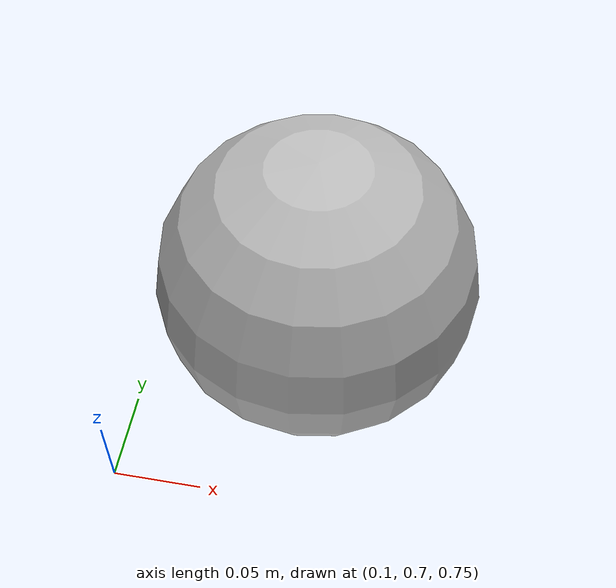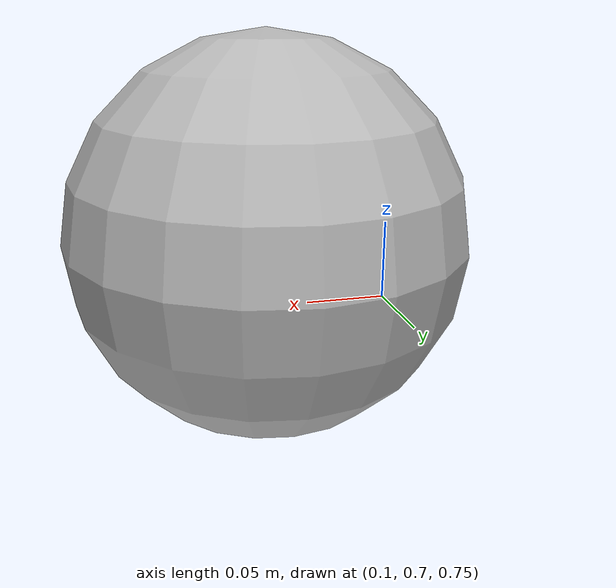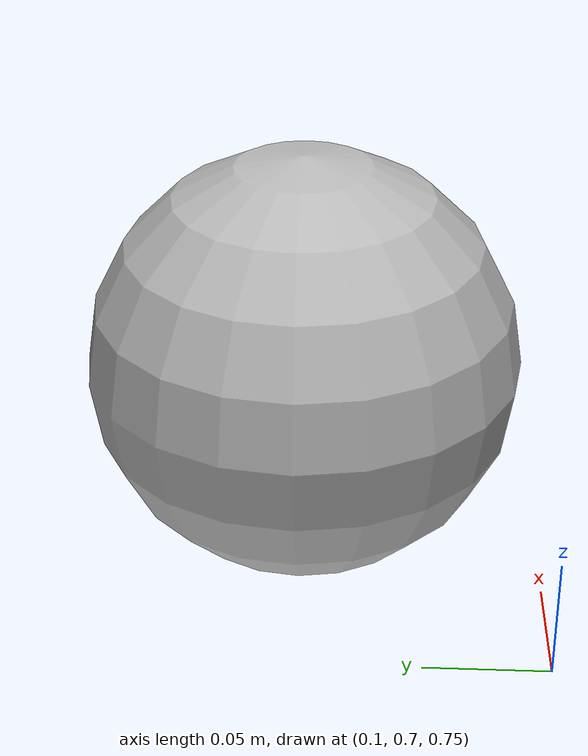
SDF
<?xml version="1.0" ?>
<sdf version="1.5">
  <model name="operating_head">
    <static>true</static>
    <link name="head">
      <pose>0.2 0.8 0.83 0 0 0</pose>
      <collision name="collision_head">
        <geometry>
          <sphere>
            <radius>0.09</radius>
          </sphere>
        </geometry>
      </collision>
      <visual name="visual_head">
        <geometry>
          <sphere>
            <radius>0.09</radius>
          </sphere>
        </geometry>
      </visual>
    </link>
  </model>
</sdf>
